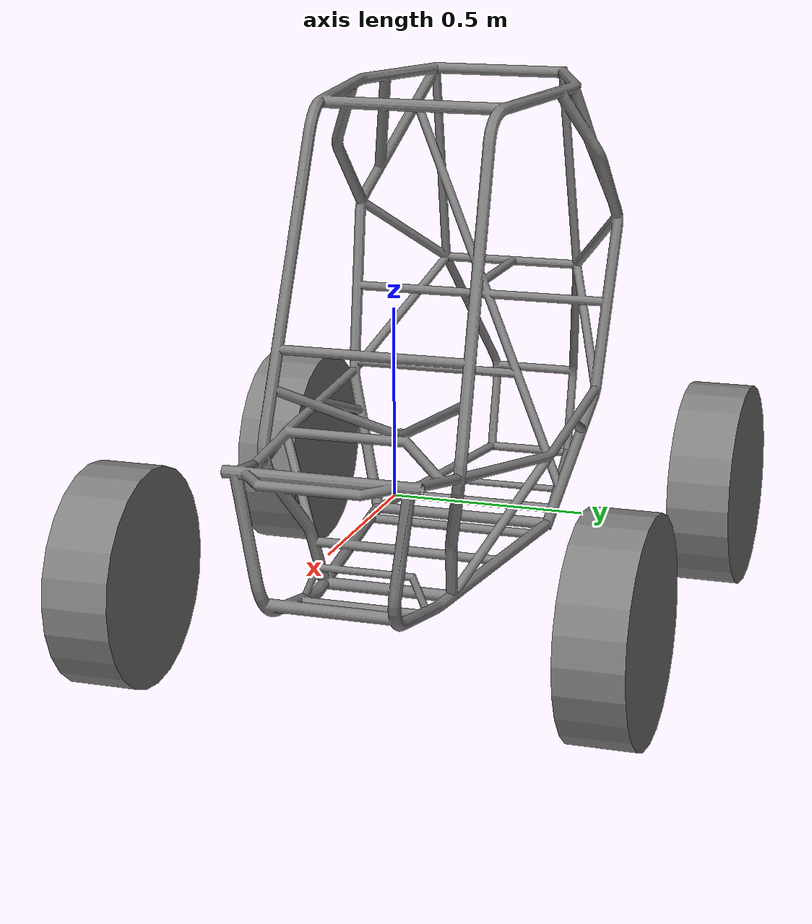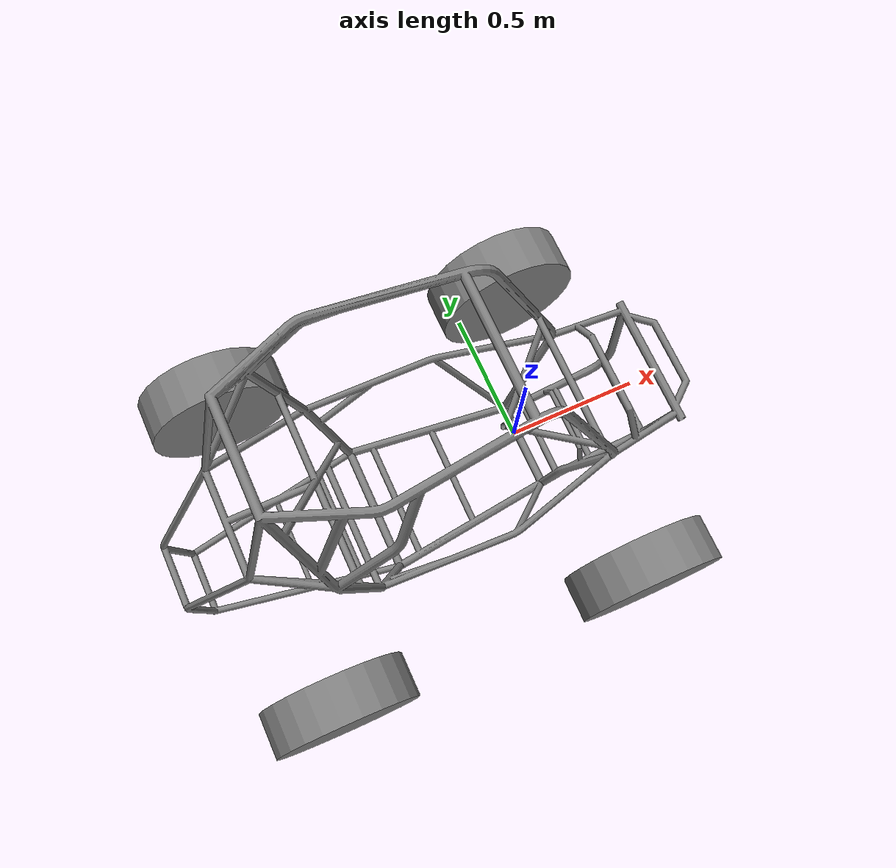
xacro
<robot xmlns:xacro="http://www.ros.org/wiki/xacro" name="car">

  <xacro:arg name="camera_on" default="false" />

  <xacro:property name="wheel_base_inches" value="51.8" />
  <xacro:property name="track_width_inches" value="50.35" />
  <xacro:property name="wheel_width_inches" value="7" />
  <xacro:property name="wheel_radius_inches" value="11.5" />
  <xacro:property name="m_per_in" value="${(1/12) * (1/3) * 0.9144}" />

  <xacro:include filename="$(find car_description)/urdf/chassis.xacro"/>
  <xacro:include filename="$(find car_description)/urdf/wheel_macros.xacro"/>
  <xacro:include filename="$(find car_description)/urdf/control.xacro"/>

  <xacro:baja_bts_control prefix=""/>

  <gazebo>
    <plugin
      filename="ignition-gazebo-joint-state-publisher-system"
      name="gz::sim::systems::JointStatePublisher">
    </plugin>
    <plugin
      filename='ignition-gazebo-sensors-system'
      name='ignition::gazebo::systems::Sensors'>
      <render_engine>ogre2</render_engine>
    </plugin>
    <plugin
      filename="ignition-gazebo-ackermann-steering-system"
      name="gz::sim::systems::AckermannSteering">
      <left_joint>front_left_rotating_joint</left_joint>
      <left_joint>rear_left_rotating_joint</left_joint>
      <right_joint>front_right_rotating_joint</right_joint>
      <right_joint>rear_right_rotating_joint</right_joint>
      <left_steering_joint>front_left_connector_joint</left_steering_joint>
      <right_steering_joint>front_right_connector_joint</right_steering_joint>
      <kingpin_width>${track_width_inches*m_per_in}</kingpin_width> <!--THIS PART IS STILL IN QUESTION-->
      <steering_limit>0.2</steering_limit> <!--THIS PART IS STILL IN QUESTION-->
      <wheel_base>${wheel_radius_inches*m_per_in}</wheel_base>
      <wheel_separation>${track_width_inches*m_per_in}</wheel_separation>
      <wheel_radius>${wheel_radius_inches*m_per_in}</wheel_radius>
      <min_velocity>-1</min_velocity>
      <max_velocity>17</max_velocity>
      <min_acceleration>-10</min_acceleration>
      <max_acceleration>5</max_acceleration>
    </plugin>
  </gazebo>

  <xacro:chassis wheel_base_in="${wheel_base_inches}" front_dist_in="10.4" weight_car_lb="400" weight_wheel_lb="10" front_box_x_in="-21.5" front_box_z_in="19.33268" cam_on="$(arg camera_on)"/>
  <xacro:wheel_connector f="1" r="1" parent_link="car_centroid" wheel_base_in="${wheel_base_inches}" track_width_in="${track_width_inches}" prefix="front_right"/>
  <xacro:wheel prefix="front_right" width_in="${wheel_width_inches}" radius_in="${wheel_radius_inches}"/>
  <xacro:wheel_connector f="1" r="0" parent_link="car_centroid" wheel_base_in="${wheel_base_inches}" track_width_in="${track_width_inches}" prefix="front_left"/>
  <xacro:wheel prefix="front_left" width_in="${wheel_width_inches}" radius_in="${wheel_radius_inches}"/>
  <xacro:wheel_connector f="0" r="1" parent_link="car_centroid" wheel_base_in="${wheel_base_inches}" track_width_in="${track_width_inches}" prefix="rear_right"/>
  <xacro:wheel prefix="rear_right" width_in="${wheel_width_inches}" radius_in="${wheel_radius_inches}"/>
  <xacro:wheel_connector f="0" r="0" parent_link="car_centroid" wheel_base_in="${wheel_base_inches}" track_width_in="${track_width_inches}" prefix="rear_left"/>
  <xacro:wheel prefix="rear_left" width_in="${wheel_width_inches}" radius_in="${wheel_radius_inches}"/>

</robot>

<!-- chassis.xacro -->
<robot xmlns:xacro="http://www.ros.org/wiki/xacro" name="rbiswas4_assignment5">

  <xacro:macro name="chassis" params="wheel_base_in front_dist_in weight_car_lb weight_wheel_lb front_box_x_in front_box_z_in cam_on">

    <xacro:property name="fraction_of_weight_for_reference_links" value="0.3" />
    <xacro:property name="num_reference_links" value="3" />
    <xacro:property name="mass_of_reference_link" value="${((weight_car_lb - 4*weight_wheel_lb) * fraction_of_weight_for_reference_links / num_reference_links) * 0.45359237}" />
    <xacro:property name="com_fraction" value="0.401" />
    <xacro:property name="m_per_in" value="${(1/12) * (1/3) * 0.9144}" />
    <xacro:property name="kg_per_lb" value="0.45359237" />

    <link name="base_link">
      <inertial>
        <origin xyz="0 0 0" rpy="0 0 0"/>
        <mass value="${kg_per_lb*644292/5417}"/>
        <inertia ixx="1" ixy="0" ixz="0" iyy="1" iyz="0" izz="1"/>
      </inertial>
    </link>

    <joint name="centroid_joint" type="fixed">
      <parent link="base_link"/>
      <child link="car_centroid"/>
      <origin xyz="${-(wheel_base_in/2 + front_dist_in + front_box_x_in) * m_per_in} 0 ${-19.33268*m_per_in}" rpy="0 0 0"/>
    </joint>
    <gazebo reference="centroid_joint">
      <disableFixedJointLumping>true</disableFixedJointLumping>
      <preserveFixedJoint>true</preserveFixedJoint>
    </gazebo>

    <link name="car_centroid">
      <inertial>
        <origin xyz="0 0 0" rpy="0 0 0"/>
        <mass value="${kg_per_lb*4794828/27085}"/>
        <inertia ixx="1" ixy="0" ixz="0" iyy="1" iyz="0" izz="1"/>
      </inertial>
    </link>

    <joint name="cad_origin_joint" type="fixed">
      <parent link="car_centroid"/>
      <child link="cad_origin"/>
      <origin xyz="${(wheel_base_in/2 + front_dist_in) * m_per_in} 0 0" rpy="0 0 0"/>
      <axis xyz="0 1 0"/>
    </joint>
    <gazebo reference="cad_origin_joint">
      <disableFixedJointLumping>true</disableFixedJointLumping>
      <preserveFixedJoint>true</preserveFixedJoint>
    </gazebo>

    <link name="cad_origin">
      <inertial>
        <origin xyz="0 0 0" rpy="0 0 0"/>
        <mass value="${kg_per_lb*217116/27085}"/>
        <inertia ixx="1" ixy="0" ixz="0" iyy="1" iyz="0" izz="1"/>
      </inertial>
    </link>

    <joint name="body_frame_joint" type="fixed">
      <parent link="car_centroid"/>
      <child link="body_frame"/>
      <origin xyz="0 0 ${10*m_per_in}" rpy="0 0 0"/>
    </joint>
    <gazebo reference="body_frame_joint">
      <disableFixedJointLumping>true</disableFixedJointLumping>
      <preserveFixedJoint>true</preserveFixedJoint>
    </gazebo>

    <link name="body_frame">
      <visual>
        <origin xyz="0 0 0" rpy="${pi/2} 0 ${pi/2}"/>
        <geometry>
          <mesh filename="file://$(find car_description)/meshes/lowpolyframe.STL" scale="0.001 0.001 0.001"/>
        </geometry>
        <material name="Red">
          <color rgba="0.5 0.5 0.5 1"/>
        </material>
      </visual>
      <collision>
        <origin xyz="0 0 0" rpy="${pi/2} 0 ${pi/2}"/>
        <geometry>
          <mesh filename="file://$(find car_description)/meshes/lowpolyframe.STL" scale="0.001 0.001 0.001"/>
        </geometry>
      </collision>
      <inertial>
        <origin xyz="0 0 0" rpy="${pi/2} 0 ${pi/2}"/>
        <mass value="${kg_per_lb*217116/27085}"/>
        <inertia ixx="1" ixy="0" ixz="0" iyy="1" iyz="0" izz="1"/>
      </inertial>
    </link>

    <joint name="camera_origin_joint" type="fixed">
      <parent link="car_centroid"/>
      <child link="camera_origin"/>
      <origin xyz="0.5 0 1.5" rpy="0 ${pi/6} 0"/>
      <axis xyz="1 0 0"/>
    </joint>
    <gazebo reference="camera_origin_joint">
      <disableFixedJointLumping>true</disableFixedJointLumping>
      <preserveFixedJoint>true</preserveFixedJoint>
    </gazebo>

    <link name="camera_origin">
      <inertial>
        <origin xyz="0 0 0" rpy="0 0 0"/>
        <mass value="0.0001"/>
        <inertia ixx="1" ixy="0" ixz="0" iyy="1" iyz="0" izz="1"/>
      </inertial>
    </link>
    <xacro:if value="${cam_on}">
      <gazebo reference="camera_origin">
        <sensor type="rgbd_camera" name="realsense">
          <pose relative_to="camera_origin">0 0 0 0 0 0</pose>
          <update_rate>30.0</update_rate>
          <always_on>1</always_on>
          <topic>realsense</topic>
          <camera name="rgb">
            <horizontal_fov>1.5708</horizontal_fov>
            <image>
              <width>1280</width>
              <height>800</height>
              <format>R8G8B8</format>
            </image>
            <clip>
              <near>0.02</near>
              <far>6</far>
            </clip>
            <depth_camera>
              <output>depths</output>
            </depth_camera>
          </camera>
        </sensor>
      </gazebo>
    </xacro:if>

  </xacro:macro>

</robot>

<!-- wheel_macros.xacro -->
<robot xmlns:xacro="http://www.ros.org/wiki/xacro" name="wheel_macros">

  <xacro:macro name="wheel" params="prefix width_in radius_in">

    <xacro:property name="m_per_in" value="${(1/12) * (1/3) * 0.9144}" />
    <xacro:property name="kg_per_lb" value="0.45359237" />

    <joint name="${prefix}_rotating_joint" type="continuous">
      <parent link="${prefix}_connector"/>
      <child link="${prefix}_wheel"/>
      <origin xyz="0 0 ${radius_in*m_per_in}" rpy="0 0 0"/>
      <axis xyz="0 1 0"/>
    </joint>

    <link name="${prefix}_wheel">
      <visual>
        <origin xyz="0 0 0" rpy="${pi/2} 0 0"/>
        <geometry>
          <cylinder radius="${radius_in*m_per_in}" length="${width_in*m_per_in}"/>
        </geometry>
        <material name="Green">
          <color rgba="0.5 0.5 0.5 1"/>
        </material>
      </visual>
      <collision>
        <origin xyz="0 0 0" rpy="${pi/2} 0 0"/>
        <geometry>
          <cylinder radius="${radius_in*m_per_in}" length="${width_in*m_per_in}"/>
        </geometry>
      </collision>
      <inertial>
        <origin xyz="0 0 0" rpy="0 0 0"/>
        <mass value="${10*kg_per_lb}"/>
        <inertia ixx="1.75e-5" ixy="0" ixz="0" iyy="1.75e-5" iyz="0" izz="1.75e-5"/>
      </inertial>
    </link>

  </xacro:macro>

  <xacro:macro name="wheel_connector" params="f r parent_link wheel_base_in track_width_in prefix">

    <xacro:property name="m_per_in" value="${(1/12) * (1/3) * 0.9144}" />
    <xacro:property name="kg_per_lb" value="0.45359237" />
    <xacro:property name="rad_per_deg" value="${pi/180}" />

    <xacro:if value="${f}">
      <xacro:if value="${r}">
        <joint name="${prefix}_connector_joint" type="revolute">
          <parent link="${parent_link}"/>
          <child link="${prefix}_connector"/>
          <origin xyz="${track_width_in*m_per_in/2} ${-wheel_base_in*m_per_in/2} 0" rpy="0 0 0"/>
          <limit effort="30" velocity="1.0" lower="${-47*rad_per_deg}" upper="${47*rad_per_deg}" />
          <axis xyz="0 0 1"/>
        </joint>
      </xacro:if>
      <xacro:unless value="${r}">
        <joint name="${prefix}_connector_joint" type="revolute">
          <parent link="${parent_link}"/>
          <child link="${prefix}_connector"/>
          <origin xyz="${track_width_in*m_per_in/2} ${wheel_base_in*m_per_in/2} 0" rpy="0 0 0"/>
          <limit effort="30" velocity="1.0" lower="${-47*rad_per_deg}" upper="${47*rad_per_deg}" />
          <axis xyz="0 0 1"/>
        </joint>
      </xacro:unless>
    </xacro:if>
    <xacro:unless value="${f}">
      <xacro:if value="${r}">
        <joint name="${prefix}_connector_joint" type="fixed">
          <parent link="${parent_link}"/>
          <child link="${prefix}_connector"/>
          <origin xyz="${-track_width_in*m_per_in/2} ${-wheel_base_in*m_per_in/2} 0" rpy="0 0 0"/>
        </joint>
      </xacro:if>
      <xacro:unless value="${r}">
        <joint name="${prefix}_connector_joint" type="fixed">
          <parent link="${parent_link}"/>
          <child link="${prefix}_connector"/>
          <origin xyz="${-track_width_in*m_per_in/2} ${wheel_base_in*m_per_in/2} 0" rpy="0 0 0"/>
        </joint>
      </xacro:unless>
      <gazebo reference="${prefix}_connector_joint">
        <disableFixedJointLumping>true</disableFixedJointLumping>
        <preserveFixedJoint>true</preserveFixedJoint>
      </gazebo>
    </xacro:unless>

    <link name="${prefix}_connector">
      <inertial>
        <origin xyz="0 0 0" rpy="0 0 0"/>
        <mass value="${kg_per_lb}"/>
        <inertia ixx="1.75e-5" ixy="0" ixz="0" iyy="1.75e-5" iyz="0" izz="1.75e-5"/>
      </inertial>
    </link>

  </xacro:macro>

</robot>
